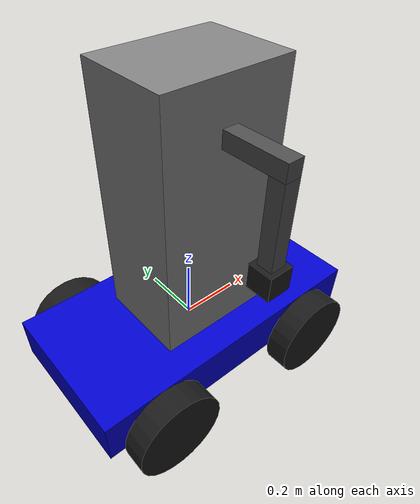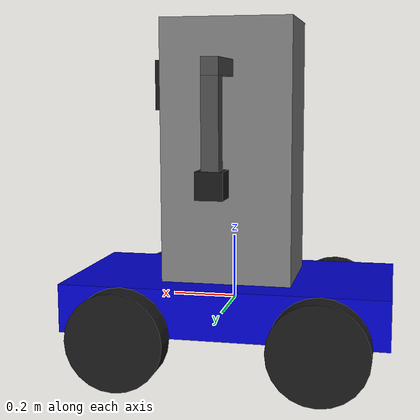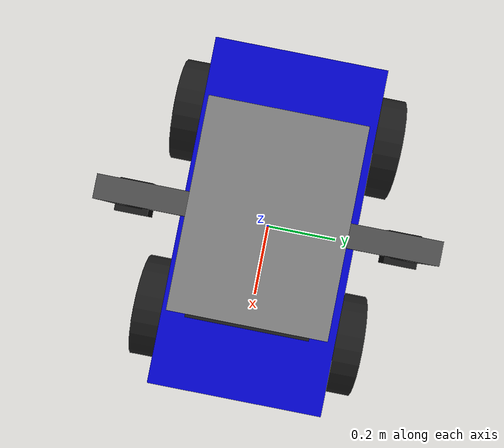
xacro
<?xml version="1.0"?>
<robot name="advanced_differential_robot" xmlns:xacro="http://www.ros.org/wiki/xacro">

  <!-- ========== КОНСТАНТЫ ========== -->
  <xacro:property name="BASE_LENGTH" value="1.0" />
  <xacro:property name="BASE_WIDTH" value="0.5" />
  <xacro:property name="BASE_HEIGHT" value="0.15" />

  <xacro:property name="BODY_LENGTH" value="0.4" />
  <xacro:property name="BODY_WIDTH" value="0.3" />
  <xacro:property name="BODY_HEIGHT" value="0.8" />

  <xacro:property name="WHEEL_RADIUS" value="0.15" />
  <xacro:property name="WHEEL_LENGTH" value="0.08" />

  <xacro:property name="SCREEN_THICKNESS" value="0.02" />
  <xacro:property name="SCREEN_WIDTH" value="0.25" />
  <xacro:property name="SCREEN_HEIGHT" value="0.15" />

  <xacro:property name="WHEEL_X_OFFSET" value="0.3" />
  <xacro:property name="WHEEL_Y_OFFSET" value="0.29" />

  <!-- ========== МАКРОС ДЛЯ КОЛЕСА ========== -->
  <xacro:macro name="wheel" params="name x y">
    <link name="${name}">
      <visual>
        <geometry>
          <cylinder length="${WHEEL_LENGTH}" radius="${WHEEL_RADIUS}"/>
        </geometry>
        <material name="black"/>
      </visual>
      <collision>
        <geometry>
          <cylinder length="${WHEEL_LENGTH}" radius="${WHEEL_RADIUS}"/>
        </geometry>
      </collision>
      <inertial>
        <mass value="1.0"/>
        <inertia ixx="0.04" ixy="0.0" ixz="0.0" iyy="0.04" iyz="0.0" izz="0.08"/>
      </inertial>
    </link>

    <joint name="${name}_joint" type="continuous">
      <parent link="base_link"/>
      <child link="${name}"/>
      <origin xyz="${x} ${y} -0.075" rpy="1.5708 0 0"/>
      <axis xyz="0 0 1"/>
    </joint>
  </xacro:macro>

  <!-- ========== МАКРОС ДЛЯ РУКИ ========== -->
  <xacro:macro name="arm" params="side">
    <!-- Определяем смещения в зависимости от стороны -->
    <xacro:if value="${side == 'left'}">
      <xacro:property name="y_shoulder_origin" value="0.15" />
      <xacro:property name="y_shoulder_visual" value="0.1" />
      <xacro:property name="y_elbow_origin" value="0.175" />
    </xacro:if>
    <xacro:unless value="${side == 'left'}">
      <xacro:property name="y_shoulder_origin" value="-0.15" />
      <xacro:property name="y_shoulder_visual" value="-0.1" />
      <xacro:property name="y_elbow_origin" value="-0.175" />
    </xacro:unless>

    <!-- Плечо -->
    <link name="${side}_shoulder_link">
      <visual>
        <origin xyz="0 ${y_shoulder_visual} 0" rpy="0 0 0"/>
        <geometry>
          <box size="0.05 0.2 0.05"/>
        </geometry>
        <material name="dark_gray"/>
      </visual>
      <collision>
        <origin xyz="0 ${y_shoulder_visual} 0" rpy="0 0 0"/>
        <geometry>
          <box size="0.05 0.2 0.05"/>
        </geometry>
      </collision>
      <inertial>
        <mass value="0.3"/>
        <inertia ixx="0.003" ixy="0.0" ixz="0.0" iyy="0.003" iyz="0.0" izz="0.001"/>
      </inertial>
    </link>

    <joint name="${side}_shoulder_joint" type="fixed">
      <parent link="body_link"/>
      <child link="${side}_shoulder_link"/>
      <origin xyz="0 ${y_shoulder_origin} 0.25" rpy="0 0 0"/>
    </joint>

    <!-- Предплечье -->
    <link name="${side}_forearm_link">
      <visual>
        <origin xyz="0 0 -0.15" rpy="0 0 0"/>
        <geometry>
          <box size="0.05 0.05 0.3"/>
        </geometry>
        <material name="dark_gray"/>
      </visual>
      <collision>
        <origin xyz="0 0 -0.15" rpy="0 0 0"/>
        <geometry>
          <box size="0.05 0.05 0.3"/>
        </geometry>
      </collision>
      <inertial>
        <mass value="0.2"/>
        <inertia ixx="0.002" ixy="0.0" ixz="0.0" iyy="0.002" iyz="0.0" izz="0.001"/>
      </inertial>
    </link>

    <joint name="${side}_elbow_joint" type="fixed">
      <parent link="${side}_shoulder_link"/>
      <child link="${side}_forearm_link"/>
      <origin xyz="0 ${y_elbow_origin} -0.025" rpy="0 0 0"/>
    </joint>

    <!-- Кисть -->
    <link name="${side}_hand_link">
      <visual>
        <geometry>
          <box size="0.08 0.08 0.08"/>
        </geometry>
        <material name="black"/>
      </visual>
      <collision>
        <geometry>
          <box size="0.08 0.08 0.08"/>
        </geometry>
      </collision>
      <inertial>
        <mass value="0.1"/>
        <inertia ixx="0.0005" ixy="0.0" ixz="0.0" iyy="0.0005" iyz="0.0" izz="0.0005"/>
      </inertial>
    </link>

    <joint name="${side}_hand_joint" type="fixed">
      <parent link="${side}_forearm_link"/>
      <child link="${side}_hand_link"/>
      <origin xyz="0 0 -0.3" rpy="0 0 0"/>
    </joint>
  </xacro:macro>

  <!-- ========== ОСНОВНАЯ СТРУКТУРА ========== -->
  <material name="blue">
    <color rgba="0 0 0.8 1"/>
  </material>
  <material name="black">
    <color rgba="0.1 0.1 0.1 1"/>
  </material>
  <material name="gray">
    <color rgba="0.5 0.5 0.5 1"/>
  </material>
  <material name="dark_gray">
    <color rgba="0.3 0.3 0.3 1"/>
  </material>

  <!-- База робота -->
  <link name="base_link">
    <visual>
      <geometry>
        <box size="${BASE_LENGTH} ${BASE_WIDTH} ${BASE_HEIGHT}"/>
      </geometry>
      <material name="blue"/>
    </visual>
    <collision>
      <geometry>
        <box size="${BASE_LENGTH} ${BASE_WIDTH} ${BASE_HEIGHT}"/>
      </geometry>
    </collision>
    <inertial>
      <mass value="12.0"/>
      <inertia ixx="0.4" ixy="0.0" ixz="0.0" iyy="0.4" iyz="0.0" izz="0.3"/>
    </inertial>
  </link>

  <!-- Тело робота -->
  <link name="body_link">
    <visual>
      <geometry>
        <box size="${BODY_LENGTH} ${BODY_WIDTH} ${BODY_HEIGHT}"/>
      </geometry>
      <material name="gray"/>
    </visual>
    <collision>
      <geometry>
        <box size="${BODY_LENGTH} ${BODY_WIDTH} ${BODY_HEIGHT}"/>
      </geometry>
    </collision>
    <inertial>
      <mass value="6.0"/>
      <inertia ixx="0.2" ixy="0.0" ixz="0.0" iyy="0.2" iyz="0.0" izz="0.4"/>
    </inertial>
  </link>

  <joint name="body_joint" type="fixed">
    <parent link="base_link"/>
    <child link="body_link"/>
    <origin xyz="0 0 0.475" rpy="0 0 0"/>
  </joint>

  <!-- Экран -->
  <link name="screen_link">
    <visual>
      <geometry>
        <box size="${SCREEN_THICKNESS} ${SCREEN_WIDTH} ${SCREEN_HEIGHT}"/>
      </geometry>
      <material name="black"/>
    </visual>
    <collision>
      <geometry>
        <box size="${SCREEN_THICKNESS} ${SCREEN_WIDTH} ${SCREEN_HEIGHT}"/>
      </geometry>
    </collision>
    <inertial>
      <mass value="0.3"/>
      <inertia ixx="0.002" ixy="0.0" ixz="0.0" iyy="0.002" iyz="0.0" izz="0.001"/>
    </inertial>
  </link>

  <joint name="screen_joint" type="fixed">
    <parent link="body_link"/>
    <child link="screen_link"/>
    <origin xyz="0.21 0 0.2" rpy="0 0 0"/>
  </joint>

  <!-- Использование макросов -->
  <xacro:arm side="left"/>
  <xacro:arm side="right"/>

  <xacro:wheel name="front_left_wheel" x="${WHEEL_X_OFFSET}" y="${WHEEL_Y_OFFSET}"/>
  <xacro:wheel name="front_right_wheel" x="${WHEEL_X_OFFSET}" y="${-WHEEL_Y_OFFSET}"/>
  <xacro:wheel name="rear_left_wheel" x="${-WHEEL_X_OFFSET}" y="${WHEEL_Y_OFFSET}"/>
  <xacro:wheel name="rear_right_wheel" x="${-WHEEL_X_OFFSET}" y="${-WHEEL_Y_OFFSET}"/>

</robot>
